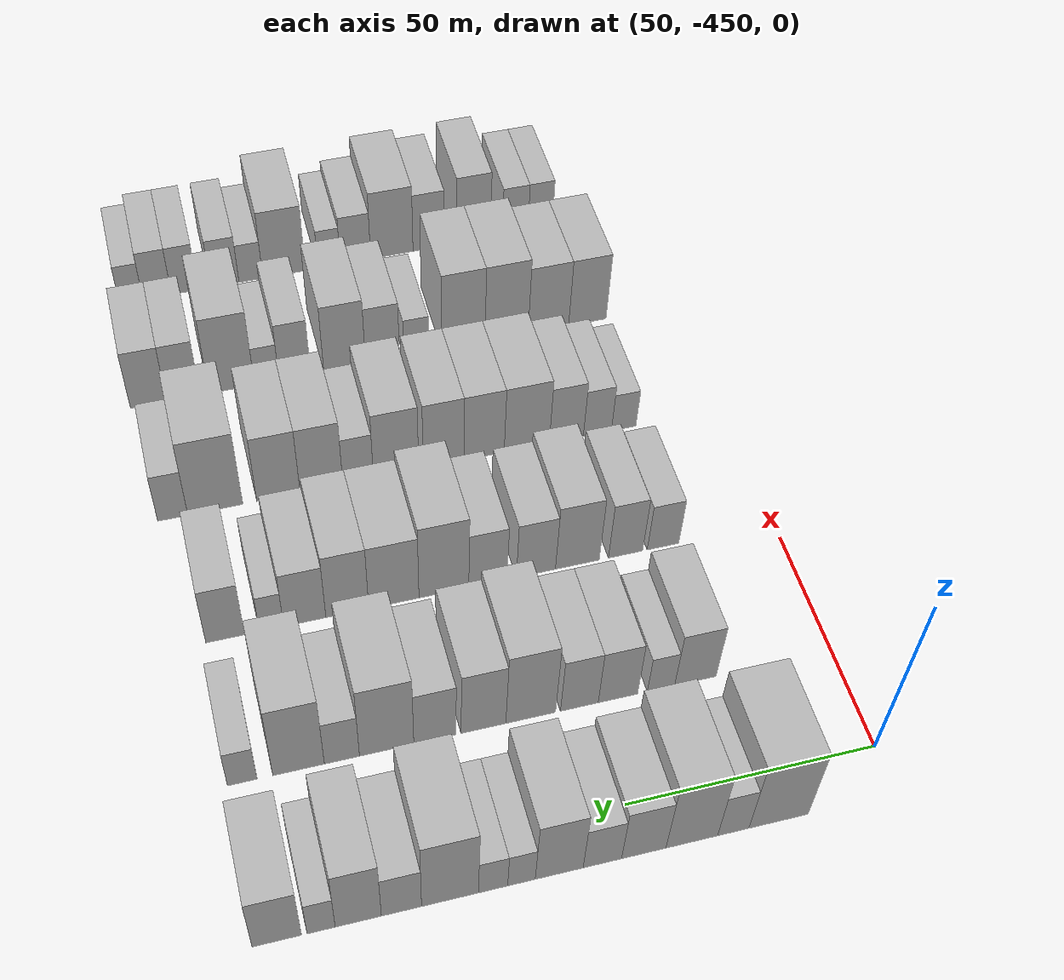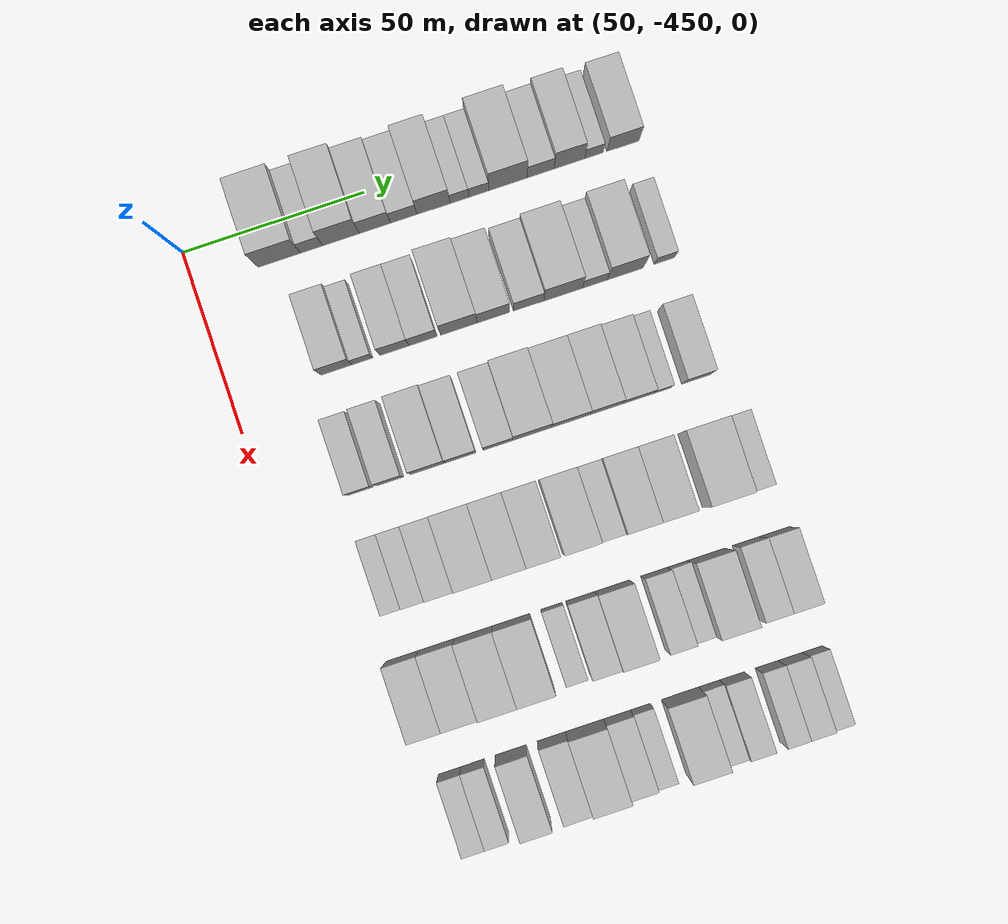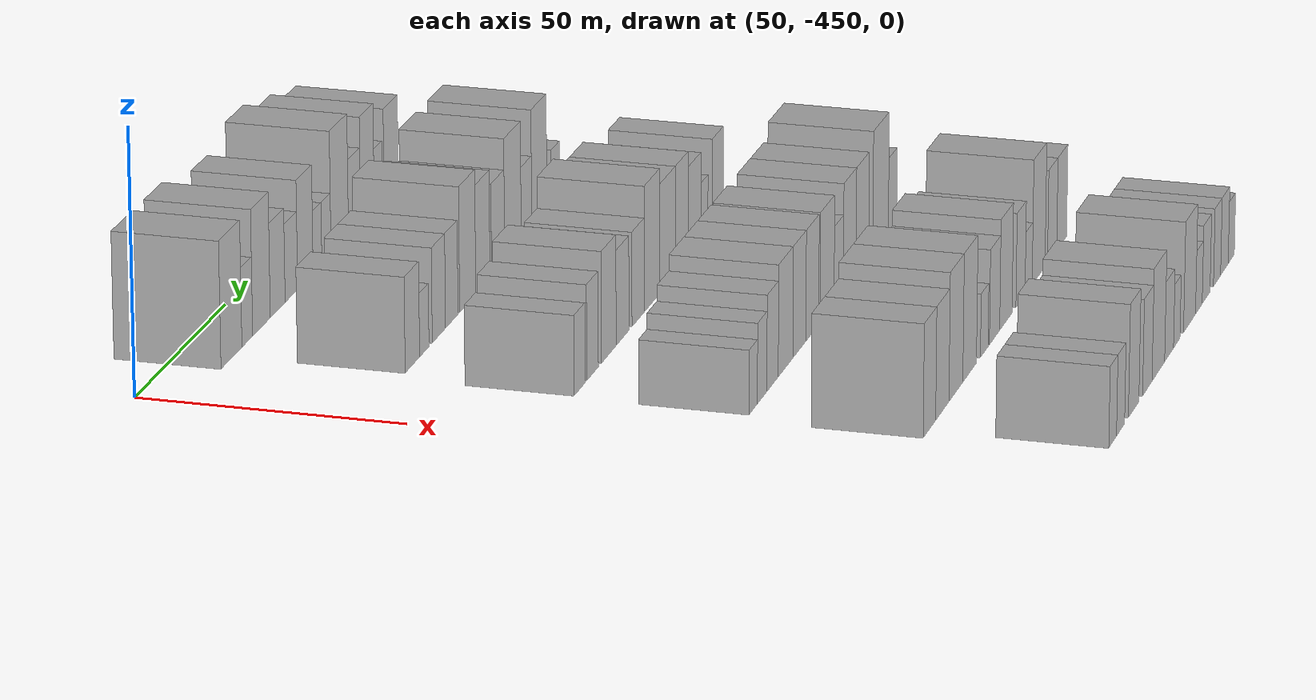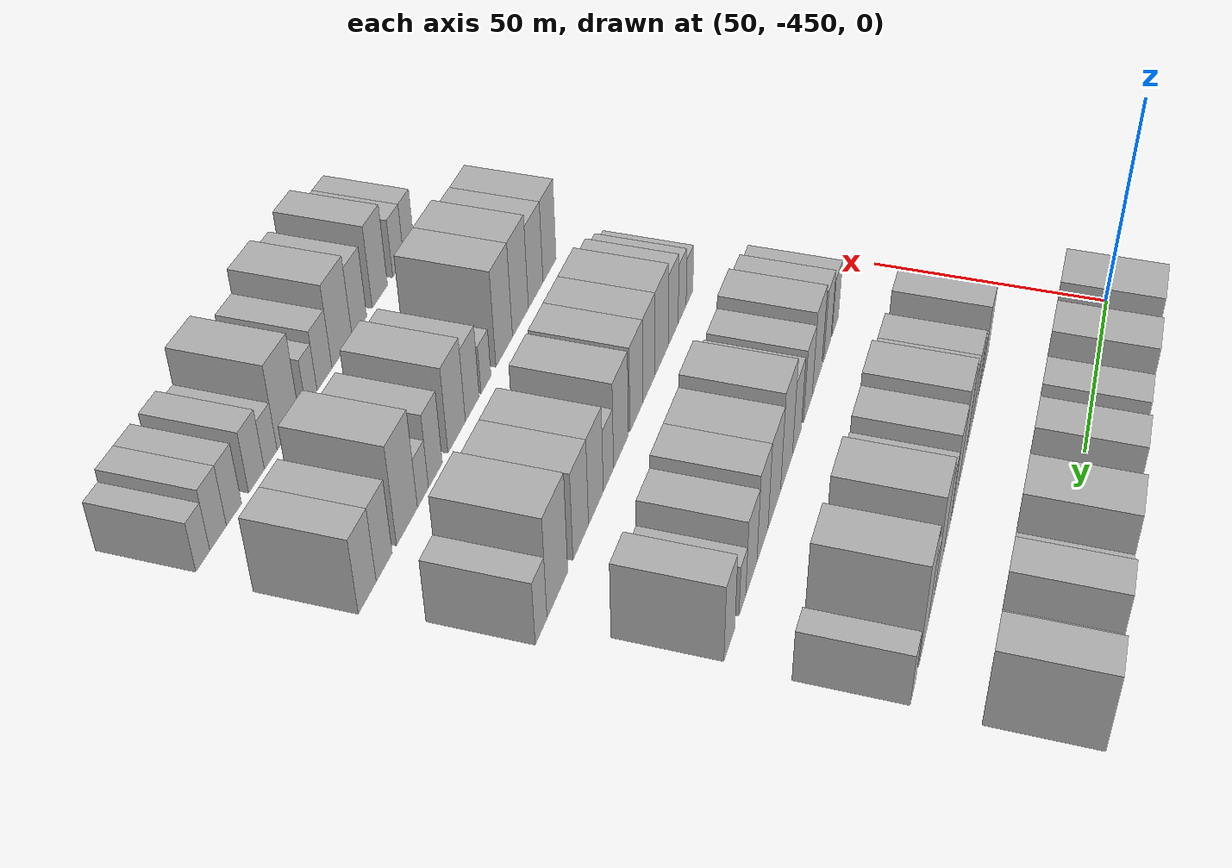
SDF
<sdf version="1.6">
 <world name="default">
  <model name="building_14">
   <static>1</static>
   <pose>50.0000 -426.5476 0 0.000000 0.000000 0.000000</pose>
   <link name="link">
    <pose>0 0 12.00 0 0 0</pose>
    <collision name="collision"><geometry><box><size>20.0000 11.7119 24.0000</size></box></geometry></collision>
    <visual name="visual">
     <cast_shadows>0</cast_shadows>
     <geometry><box><size>20.0000 11.7119 24.0000</size></box></geometry>
     <material>
      <script>
       <uri>model://HANNAS_wall/materials/scripts</uri>
       <uri>model://HANNAS_wall/materials/textures</uri>
       <name>vrc/HANNAS_wall</name>
      </script>
     </material>
    </visual>
   </link>
  </model>
  <model name="building_15">
   <static>1</static>
   <pose>50.0000 -417.6448 0 0.000000 0.000000 0.000000</pose>
   <link name="link">
    <pose>0 0 7.50 0 0 0</pose>
    <collision name="collision"><geometry><box><size>20.0000 6.0938 15.0000</size></box></geometry></collision>
    <visual name="visual">
     <cast_shadows>0</cast_shadows>
     <geometry><box><size>20.0000 6.0938 15.0000</size></box></geometry>
     <material>
      <script>
       <uri>model://HANNAS_wall/materials/scripts</uri>
       <uri>model://HANNAS_wall/materials/textures</uri>
       <name>vrc/HANNAS_wall</name>
      </script>
     </material>
    </visual>
   </link>
  </model>
  <model name="building_16">
   <static>1</static>
   <pose>50.0000 -409.5746 0 0.000000 0.000000 0.000000</pose>
   <link name="link">
    <pose>0 0 12.00 0 0 0</pose>
    <collision name="collision"><geometry><box><size>20.0000 10.0467 24.0000</size></box></geometry></collision>
    <visual name="visual">
     <cast_shadows>0</cast_shadows>
     <geometry><box><size>20.0000 10.0467 24.0000</size></box></geometry>
     <material>
      <script>
       <uri>model://HANNAS_wall/materials/scripts</uri>
       <uri>model://HANNAS_wall/materials/textures</uri>
       <name>vrc/HANNAS_wall</name>
      </script>
     </material>
    </visual>
   </link>
  </model>
  <model name="building_17">
   <static>1</static>
   <pose>50.0000 -400.2621 0 0.000000 0.000000 0.000000</pose>
   <link name="link">
    <pose>0 0 9.00 0 0 0</pose>
    <collision name="collision"><geometry><box><size>20.0000 8.5783 18.0000</size></box></geometry></collision>
    <visual name="visual">
     <cast_shadows>0</cast_shadows>
     <geometry><box><size>20.0000 8.5783 18.0000</size></box></geometry>
     <material>
      <script>
       <uri>model://HANNAS_wall/materials/scripts</uri>
       <uri>model://HANNAS_wall/materials/textures</uri>
       <name>vrc/HANNAS_wall</name>
      </script>
     </material>
    </visual>
   </link>
  </model>
  <model name="building_18">
   <static>1</static>
   <pose>50.0000 -392.3119 0 0.000000 0.000000 0.000000</pose>
   <link name="link">
    <pose>0 0 7.50 0 0 0</pose>
    <collision name="collision"><geometry><box><size>20.0000 7.3221 15.0000</size></box></geometry></collision>
    <visual name="visual">
     <cast_shadows>0</cast_shadows>
     <geometry><box><size>20.0000 7.3221 15.0000</size></box></geometry>
     <material>
      <script>
       <uri>model://HANNAS_wall/materials/scripts</uri>
       <uri>model://HANNAS_wall/materials/textures</uri>
       <name>vrc/HANNAS_wall</name>
      </script>
     </material>
    </visual>
   </link>
  </model>
  <model name="building_19">
   <static>1</static>
   <pose>50.0000 -384.1086 0 0.000000 0.000000 0.000000</pose>
   <link name="link">
    <pose>0 0 10.50 0 0 0</pose>
    <collision name="collision"><geometry><box><size>20.0000 9.0845 21.0000</size></box></geometry></collision>
    <visual name="visual">
     <cast_shadows>0</cast_shadows>
     <geometry><box><size>20.0000 9.0845 21.0000</size></box></geometry>
     <material>
      <script>
       <uri>model://HANNAS_wall/materials/scripts</uri>
       <uri>model://HANNAS_wall/materials/textures</uri>
       <name>vrc/HANNAS_wall</name>
      </script>
     </material>
    </visual>
   </link>
  </model>
  <model name="building_20">
   <static>1</static>
   <pose>50.0000 -376.9728 0 0.000000 0.000000 0.000000</pose>
   <link name="link">
    <pose>0 0 6.00 0 0 0</pose>
    <collision name="collision"><geometry><box><size>20.0000 5.1870 12.0000</size></box></geometry></collision>
    <visual name="visual">
     <cast_shadows>0</cast_shadows>
     <geometry><box><size>20.0000 5.1870 12.0000</size></box></geometry>
     <material>
      <script>
       <uri>model://HANNAS_wall/materials/scripts</uri>
       <uri>model://HANNAS_wall/materials/textures</uri>
       <name>vrc/HANNAS_wall</name>
      </script>
     </material>
    </visual>
   </link>
  </model>
  <model name="building_21">
   <static>1</static>
   <pose>50.0000 -371.6373 0 0.000000 0.000000 0.000000</pose>
   <link name="link">
    <pose>0 0 6.00 0 0 0</pose>
    <collision name="collision"><geometry><box><size>20.0000 5.4841 12.0000</size></box></geometry></collision>
    <visual name="visual">
     <cast_shadows>0</cast_shadows>
     <geometry><box><size>20.0000 5.4841 12.0000</size></box></geometry>
     <material>
      <script>
       <uri>model://HANNAS_wall/materials/scripts</uri>
       <uri>model://HANNAS_wall/materials/textures</uri>
       <name>vrc/HANNAS_wall</name>
      </script>
     </material>
    </visual>
   </link>
  </model>
  <model name="building_22">
   <static>1</static>
   <pose>50.0000 -363.6183 0 0.000000 0.000000 0.000000</pose>
   <link name="link">
    <pose>0 0 12.00 0 0 0</pose>
    <collision name="collision"><geometry><box><size>20.0000 10.5539 24.0000</size></box></geometry></collision>
    <visual name="visual">
     <cast_shadows>0</cast_shadows>
     <geometry><box><size>20.0000 10.5539 24.0000</size></box></geometry>
     <material>
      <script>
       <uri>model://HANNAS_wall/materials/scripts</uri>
       <uri>model://HANNAS_wall/materials/textures</uri>
       <name>vrc/HANNAS_wall</name>
      </script>
     </material>
    </visual>
   </link>
  </model>
  <model name="building_23">
   <static>1</static>
   <pose>50.0000 -354.6401 0 0.000000 0.000000 0.000000</pose>
   <link name="link">
    <pose>0 0 7.50 0 0 0</pose>
    <collision name="collision"><geometry><box><size>20.0000 7.4026 15.0000</size></box></geometry></collision>
    <visual name="visual">
     <cast_shadows>0</cast_shadows>
     <geometry><box><size>20.0000 7.4026 15.0000</size></box></geometry>
     <material>
      <script>
       <uri>model://HANNAS_wall/materials/scripts</uri>
       <uri>model://HANNAS_wall/materials/textures</uri>
       <name>vrc/HANNAS_wall</name>
      </script>
     </material>
    </visual>
   </link>
  </model>
  <model name="building_24">
   <static>1</static>
   <pose>50.0000 -346.7290 0 0.000000 0.000000 0.000000</pose>
   <link name="link">
    <pose>0 0 10.50 0 0 0</pose>
    <collision name="collision"><geometry><box><size>20.0000 8.4196 21.0000</size></box></geometry></collision>
    <visual name="visual">
     <cast_shadows>0</cast_shadows>
     <geometry><box><size>20.0000 8.4196 21.0000</size></box></geometry>
     <material>
      <script>
       <uri>model://HANNAS_wall/materials/scripts</uri>
       <uri>model://HANNAS_wall/materials/textures</uri>
       <name>vrc/HANNAS_wall</name>
      </script>
     </material>
    </visual>
   </link>
  </model>
  <model name="building_25">
   <static>1</static>
   <pose>50.0000 -339.9588 0 0.000000 0.000000 0.000000</pose>
   <link name="link">
    <pose>0 0 6.00 0 0 0</pose>
    <collision name="collision"><geometry><box><size>20.0000 5.1209 12.0000</size></box></geometry></collision>
    <visual name="visual">
     <cast_shadows>0</cast_shadows>
     <geometry><box><size>20.0000 5.1209 12.0000</size></box></geometry>
     <material>
      <script>
       <uri>model://HANNAS_wall/materials/scripts</uri>
       <uri>model://HANNAS_wall/materials/textures</uri>
       <name>vrc/HANNAS_wall</name>
      </script>
     </material>
    </visual>
   </link>
  </model>
  <model name="building_26">
   <static>1</static>
   <pose>50.0000 -331.9432 0 0.000000 0.000000 0.000000</pose>
   <link name="link">
    <pose>0 0 9.00 0 0 0</pose>
    <collision name="collision"><geometry><box><size>20.0000 8.9103 18.0000</size></box></geometry></collision>
    <visual name="visual">
     <cast_shadows>0</cast_shadows>
     <geometry><box><size>20.0000 8.9103 18.0000</size></box></geometry>
     <material>
      <script>
       <uri>model://HANNAS_wall/materials/scripts</uri>
       <uri>model://HANNAS_wall/materials/textures</uri>
       <name>vrc/HANNAS_wall</name>
      </script>
     </material>
    </visual>
   </link>
  </model>
  <model name="building_133">
   <static>1</static>
   <pose>82.0000 -421.3788 0 0.000000 0.000000 0.000000</pose>
   <link name="link">
    <pose>0 0 9.00 0 0 0</pose>
    <collision name="collision"><geometry><box><size>20.0000 8.5883 18.0000</size></box></geometry></collision>
    <visual name="visual">
     <cast_shadows>0</cast_shadows>
     <geometry><box><size>20.0000 8.5883 18.0000</size></box></geometry>
     <material>
      <script>
       <uri>model://HANNAS_wall/materials/scripts</uri>
       <uri>model://HANNAS_wall/materials/textures</uri>
       <name>vrc/HANNAS_wall</name>
      </script>
     </material>
    </visual>
   </link>
  </model>
  <model name="building_134">
   <static>1</static>
   <pose>82.0000 -414.2741 0 0.000000 0.000000 0.000000</pose>
   <link name="link">
    <pose>0 0 6.00 0 0 0</pose>
    <collision name="collision"><geometry><box><size>20.0000 5.6212 12.0000</size></box></geometry></collision>
    <visual name="visual">
     <cast_shadows>0</cast_shadows>
     <geometry><box><size>20.0000 5.6212 12.0000</size></box></geometry>
     <material>
      <script>
       <uri>model://HANNAS_wall/materials/scripts</uri>
       <uri>model://HANNAS_wall/materials/textures</uri>
       <name>vrc/HANNAS_wall</name>
      </script>
     </material>
    </visual>
   </link>
  </model>
  <model name="building_135">
   <static>1</static>
   <pose>82.0000 -405.4393 0 0.000000 0.000000 0.000000</pose>
   <link name="link">
    <pose>0 0 9.00 0 0 0</pose>
    <collision name="collision"><geometry><box><size>20.0000 8.0485 18.0000</size></box></geometry></collision>
    <visual name="visual">
     <cast_shadows>0</cast_shadows>
     <geometry><box><size>20.0000 8.0485 18.0000</size></box></geometry>
     <material>
      <script>
       <uri>model://HANNAS_wall/materials/scripts</uri>
       <uri>model://HANNAS_wall/materials/textures</uri>
       <name>vrc/HANNAS_wall</name>
      </script>
     </material>
    </visual>
   </link>
  </model>
  <model name="building_136">
   <static>1</static>
   <pose>82.0000 -397.5836 0 0.000000 0.000000 0.000000</pose>
   <link name="link">
    <pose>0 0 9.00 0 0 0</pose>
    <collision name="collision"><geometry><box><size>20.0000 7.6629 18.0000</size></box></geometry></collision>
    <visual name="visual">
     <cast_shadows>0</cast_shadows>
     <geometry><box><size>20.0000 7.6629 18.0000</size></box></geometry>
     <material>
      <script>
       <uri>model://HANNAS_wall/materials/scripts</uri>
       <uri>model://HANNAS_wall/materials/textures</uri>
       <name>vrc/HANNAS_wall</name>
      </script>
     </material>
    </visual>
   </link>
  </model>
  <model name="building_137">
   <static>1</static>
   <pose>82.0000 -387.7537 0 0.000000 0.000000 0.000000</pose>
   <link name="link">
    <pose>0 0 12.00 0 0 0</pose>
    <collision name="collision"><geometry><box><size>20.0000 9.9969 24.0000</size></box></geometry></collision>
    <visual name="visual">
     <cast_shadows>0</cast_shadows>
     <geometry><box><size>20.0000 9.9969 24.0000</size></box></geometry>
     <material>
      <script>
       <uri>model://HANNAS_wall/materials/scripts</uri>
       <uri>model://HANNAS_wall/materials/textures</uri>
       <name>vrc/HANNAS_wall</name>
      </script>
     </material>
    </visual>
   </link>
  </model>
  <model name="building_138">
   <static>1</static>
   <pose>82.0000 -378.2867 0 0.000000 0.000000 0.000000</pose>
   <link name="link">
    <pose>0 0 10.50 0 0 0</pose>
    <collision name="collision"><geometry><box><size>20.0000 8.9370 21.0000</size></box></geometry></collision>
    <visual name="visual">
     <cast_shadows>0</cast_shadows>
     <geometry><box><size>20.0000 8.9370 21.0000</size></box></geometry>
     <material>
      <script>
       <uri>model://HANNAS_wall/materials/scripts</uri>
       <uri>model://HANNAS_wall/materials/textures</uri>
       <name>vrc/HANNAS_wall</name>
      </script>
     </material>
    </visual>
   </link>
  </model>
  <model name="building_139">
   <static>1</static>
   <pose>82.0000 -368.6589 0 0.000000 0.000000 0.000000</pose>
   <link name="link">
    <pose>0 0 9.00 0 0 0</pose>
    <collision name="collision"><geometry><box><size>20.0000 8.3187 18.0000</size></box></geometry></collision>
    <visual name="visual">
     <cast_shadows>0</cast_shadows>
     <geometry><box><size>20.0000 8.3187 18.0000</size></box></geometry>
     <material>
      <script>
       <uri>model://HANNAS_wall/materials/scripts</uri>
       <uri>model://HANNAS_wall/materials/textures</uri>
       <name>vrc/HANNAS_wall</name>
      </script>
     </material>
    </visual>
   </link>
  </model>
  <model name="building_140">
   <static>1</static>
   <pose>82.0000 -359.1769 0 0.000000 0.000000 0.000000</pose>
   <link name="link">
    <pose>0 0 12.00 0 0 0</pose>
    <collision name="collision"><geometry><box><size>20.0000 10.6454 24.0000</size></box></geometry></collision>
    <visual name="visual">
     <cast_shadows>0</cast_shadows>
     <geometry><box><size>20.0000 10.6454 24.0000</size></box></geometry>
     <material>
      <script>
       <uri>model://HANNAS_wall/materials/scripts</uri>
       <uri>model://HANNAS_wall/materials/textures</uri>
       <name>vrc/HANNAS_wall</name>
      </script>
     </material>
    </visual>
   </link>
  </model>
  <model name="building_141">
   <static>1</static>
   <pose>82.0000 -350.4412 0 0.000000 0.000000 0.000000</pose>
   <link name="link">
    <pose>0 0 7.50 0 0 0</pose>
    <collision name="collision"><geometry><box><size>20.0000 6.8260 15.0000</size></box></geometry></collision>
    <visual name="visual">
     <cast_shadows>0</cast_shadows>
     <geometry><box><size>20.0000 6.8260 15.0000</size></box></geometry>
     <material>
      <script>
       <uri>model://HANNAS_wall/materials/scripts</uri>
       <uri>model://HANNAS_wall/materials/textures</uri>
       <name>vrc/HANNAS_wall</name>
      </script>
     </material>
    </visual>
   </link>
  </model>
  <model name="building_142">
   <static>1</static>
   <pose>82.0000 -342.0538 0 0.000000 0.000000 0.000000</pose>
   <link name="link">
    <pose>0 0 12.00 0 0 0</pose>
    <collision name="collision"><geometry><box><size>20.0000 9.9488 24.0000</size></box></geometry></collision>
    <visual name="visual">
     <cast_shadows>0</cast_shadows>
     <geometry><box><size>20.0000 9.9488 24.0000</size></box></geometry>
     <material>
      <script>
       <uri>model://HANNAS_wall/materials/scripts</uri>
       <uri>model://HANNAS_wall/materials/textures</uri>
       <name>vrc/HANNAS_wall</name>
      </script>
     </material>
    </visual>
   </link>
  </model>
  <model name="building_143">
   <static>1</static>
   <pose>82.0000 -331.2459 0 0.000000 0.000000 0.000000</pose>
   <link name="link">
    <pose>0 0 6.00 0 0 0</pose>
    <collision name="collision"><geometry><box><size>20.0000 5.6671 12.0000</size></box></geometry></collision>
    <visual name="visual">
     <cast_shadows>0</cast_shadows>
     <geometry><box><size>20.0000 5.6671 12.0000</size></box></geometry>
     <material>
      <script>
       <uri>model://HANNAS_wall/materials/scripts</uri>
       <uri>model://HANNAS_wall/materials/textures</uri>
       <name>vrc/HANNAS_wall</name>
      </script>
     </material>
    </visual>
   </link>
  </model>
  <model name="building_254">
   <static>1</static>
   <pose>114.0000 -425.4057 0 0.000000 0.000000 0.000000</pose>
   <link name="link">
    <pose>0 0 7.50 0 0 0</pose>
    <collision name="collision"><geometry><box><size>20.0000 6.8958 15.0000</size></box></geometry></collision>
    <visual name="visual">
     <cast_shadows>0</cast_shadows>
     <geometry><box><size>20.0000 6.8958 15.0000</size></box></geometry>
     <material>
      <script>
       <uri>model://HANNAS_wall/materials/scripts</uri>
       <uri>model://HANNAS_wall/materials/textures</uri>
       <name>vrc/HANNAS_wall</name>
      </script>
     </material>
    </visual>
   </link>
  </model>
  <model name="building_255">
   <static>1</static>
   <pose>114.0000 -417.2362 0 0.000000 0.000000 0.000000</pose>
   <link name="link">
    <pose>0 0 9.00 0 0 0</pose>
    <collision name="collision"><geometry><box><size>20.0000 7.4433 18.0000</size></box></geometry></collision>
    <visual name="visual">
     <cast_shadows>0</cast_shadows>
     <geometry><box><size>20.0000 7.4433 18.0000</size></box></geometry>
     <material>
      <script>
       <uri>model://HANNAS_wall/materials/scripts</uri>
       <uri>model://HANNAS_wall/materials/textures</uri>
       <name>vrc/HANNAS_wall</name>
      </script>
     </material>
    </visual>
   </link>
  </model>
  <model name="building_256">
   <static>1</static>
   <pose>114.0000 -406.7997 0 0.000000 0.000000 0.000000</pose>
   <link name="link">
    <pose>0 0 10.50 0 0 0</pose>
    <collision name="collision"><geometry><box><size>20.0000 9.4295 21.0000</size></box></geometry></collision>
    <visual name="visual">
     <cast_shadows>0</cast_shadows>
     <geometry><box><size>20.0000 9.4295 21.0000</size></box></geometry>
     <material>
      <script>
       <uri>model://HANNAS_wall/materials/scripts</uri>
       <uri>model://HANNAS_wall/materials/textures</uri>
       <name>vrc/HANNAS_wall</name>
      </script>
     </material>
    </visual>
   </link>
  </model>
  <model name="building_257">
   <static>1</static>
   <pose>114.0000 -397.9039 0 0.000000 0.000000 0.000000</pose>
   <link name="link">
    <pose>0 0 9.00 0 0 0</pose>
    <collision name="collision"><geometry><box><size>20.0000 8.3622 18.0000</size></box></geometry></collision>
    <visual name="visual">
     <cast_shadows>0</cast_shadows>
     <geometry><box><size>20.0000 8.3622 18.0000</size></box></geometry>
     <material>
      <script>
       <uri>model://HANNAS_wall/materials/scripts</uri>
       <uri>model://HANNAS_wall/materials/textures</uri>
       <name>vrc/HANNAS_wall</name>
      </script>
     </material>
    </visual>
   </link>
  </model>
  <model name="building_258">
   <static>1</static>
   <pose>114.0000 -387.6676 0 0.000000 0.000000 0.000000</pose>
   <link name="link">
    <pose>0 0 9.00 0 0 0</pose>
    <collision name="collision"><geometry><box><size>20.0000 8.1104 18.0000</size></box></geometry></collision>
    <visual name="visual">
     <cast_shadows>0</cast_shadows>
     <geometry><box><size>20.0000 8.1104 18.0000</size></box></geometry>
     <material>
      <script>
       <uri>model://HANNAS_wall/materials/scripts</uri>
       <uri>model://HANNAS_wall/materials/textures</uri>
       <name>vrc/HANNAS_wall</name>
      </script>
     </material>
    </visual>
   </link>
  </model>
  <model name="building_259">
   <static>1</static>
   <pose>114.0000 -378.3807 0 0.000000 0.000000 0.000000</pose>
   <link name="link">
    <pose>0 0 12.00 0 0 0</pose>
    <collision name="collision"><geometry><box><size>20.0000 10.4633 24.0000</size></box></geometry></collision>
    <visual name="visual">
     <cast_shadows>0</cast_shadows>
     <geometry><box><size>20.0000 10.4633 24.0000</size></box></geometry>
     <material>
      <script>
       <uri>model://HANNAS_wall/materials/scripts</uri>
       <uri>model://HANNAS_wall/materials/textures</uri>
       <name>vrc/HANNAS_wall</name>
      </script>
     </material>
    </visual>
   </link>
  </model>
  <model name="building_260">
   <static>1</static>
   <pose>114.0000 -367.9147 0 0.000000 0.000000 0.000000</pose>
   <link name="link">
    <pose>0 0 10.50 0 0 0</pose>
    <collision name="collision"><geometry><box><size>20.0000 10.4687 21.0000</size></box></geometry></collision>
    <visual name="visual">
     <cast_shadows>0</cast_shadows>
     <geometry><box><size>20.0000 10.4687 21.0000</size></box></geometry>
     <material>
      <script>
       <uri>model://HANNAS_wall/materials/scripts</uri>
       <uri>model://HANNAS_wall/materials/textures</uri>
       <name>vrc/HANNAS_wall</name>
      </script>
     </material>
    </visual>
   </link>
  </model>
  <model name="building_261">
   <static>1</static>
   <pose>114.0000 -358.2536 0 0.000000 0.000000 0.000000</pose>
   <link name="link">
    <pose>0 0 10.50 0 0 0</pose>
    <collision name="collision"><geometry><box><size>20.0000 8.8535 21.0000</size></box></geometry></collision>
    <visual name="visual">
     <cast_shadows>0</cast_shadows>
     <geometry><box><size>20.0000 8.8535 21.0000</size></box></geometry>
     <material>
      <script>
       <uri>model://HANNAS_wall/materials/scripts</uri>
       <uri>model://HANNAS_wall/materials/textures</uri>
       <name>vrc/HANNAS_wall</name>
      </script>
     </material>
    </visual>
   </link>
  </model>
  <model name="building_262">
   <static>1</static>
   <pose>114.0000 -349.4995 0 0.000000 0.000000 0.000000</pose>
   <link name="link">
    <pose>0 0 9.00 0 0 0</pose>
    <collision name="collision"><geometry><box><size>20.0000 8.6546 18.0000</size></box></geometry></collision>
    <visual name="visual">
     <cast_shadows>0</cast_shadows>
     <geometry><box><size>20.0000 8.6546 18.0000</size></box></geometry>
     <material>
      <script>
       <uri>model://HANNAS_wall/materials/scripts</uri>
       <uri>model://HANNAS_wall/materials/textures</uri>
       <name>vrc/HANNAS_wall</name>
      </script>
     </material>
    </visual>
   </link>
  </model>
  <model name="building_263">
   <static>1</static>
   <pose>114.0000 -342.6913 0 0.000000 0.000000 0.000000</pose>
   <link name="link">
    <pose>0 0 6.00 0 0 0</pose>
    <collision name="collision"><geometry><box><size>20.0000 4.9618 12.0000</size></box></geometry></collision>
    <visual name="visual">
     <cast_shadows>0</cast_shadows>
     <geometry><box><size>20.0000 4.9618 12.0000</size></box></geometry>
     <material>
      <script>
       <uri>model://HANNAS_wall/materials/scripts</uri>
       <uri>model://HANNAS_wall/materials/textures</uri>
       <name>vrc/HANNAS_wall</name>
      </script>
     </material>
    </visual>
   </link>
  </model>
  <model name="building_264">
   <static>1</static>
   <pose>114.0000 -333.2845 0 0.000000 0.000000 0.000000</pose>
   <link name="link">
    <pose>0 0 9.00 0 0 0</pose>
    <collision name="collision"><geometry><box><size>20.0000 7.8519 18.0000</size></box></geometry></collision>
    <visual name="visual">
     <cast_shadows>0</cast_shadows>
     <geometry><box><size>20.0000 7.8519 18.0000</size></box></geometry>
     <material>
      <script>
       <uri>model://HANNAS_wall/materials/scripts</uri>
       <uri>model://HANNAS_wall/materials/textures</uri>
       <name>vrc/HANNAS_wall</name>
      </script>
     </material>
    </visual>
   </link>
  </model>
  <model name="building_374">
   <static>1</static>
   <pose>146.0000 -427.0368 0 0.000000 0.000000 0.000000</pose>
   <link name="link">
    <pose>0 0 6.00 0 0 0</pose>
    <collision name="collision"><geometry><box><size>20.0000 5.6445 12.0000</size></box></geometry></collision>
    <visual name="visual">
     <cast_shadows>0</cast_shadows>
     <geometry><box><size>20.0000 5.6445 12.0000</size></box></geometry>
     <material>
      <script>
       <uri>model://HANNAS_wall/materials/scripts</uri>
       <uri>model://HANNAS_wall/materials/textures</uri>
       <name>vrc/HANNAS_wall</name>
      </script>
     </material>
    </visual>
   </link>
  </model>
  <model name="building_375">
   <static>1</static>
   <pose>146.0000 -420.9960 0 0.000000 0.000000 0.000000</pose>
   <link name="link">
    <pose>0 0 7.50 0 0 0</pose>
    <collision name="collision"><geometry><box><size>20.0000 6.4370 15.0000</size></box></geometry></collision>
    <visual name="visual">
     <cast_shadows>0</cast_shadows>
     <geometry><box><size>20.0000 6.4370 15.0000</size></box></geometry>
     <material>
      <script>
       <uri>model://HANNAS_wall/materials/scripts</uri>
       <uri>model://HANNAS_wall/materials/textures</uri>
       <name>vrc/HANNAS_wall</name>
      </script>
     </material>
    </visual>
   </link>
  </model>
  <model name="building_376">
   <static>1</static>
   <pose>146.0000 -413.9029 0 0.000000 0.000000 0.000000</pose>
   <link name="link">
    <pose>0 0 9.00 0 0 0</pose>
    <collision name="collision"><geometry><box><size>20.0000 7.7493 18.0000</size></box></geometry></collision>
    <visual name="visual">
     <cast_shadows>0</cast_shadows>
     <geometry><box><size>20.0000 7.7493 18.0000</size></box></geometry>
     <material>
      <script>
       <uri>model://HANNAS_wall/materials/scripts</uri>
       <uri>model://HANNAS_wall/materials/textures</uri>
       <name>vrc/HANNAS_wall</name>
      </script>
     </material>
    </visual>
   </link>
  </model>
  <model name="building_377">
   <static>1</static>
   <pose>146.0000 -404.9308 0 0.000000 0.000000 0.000000</pose>
   <link name="link">
    <pose>0 0 10.50 0 0 0</pose>
    <collision name="collision"><geometry><box><size>20.0000 10.1949 21.0000</size></box></geometry></collision>
    <visual name="visual">
     <cast_shadows>0</cast_shadows>
     <geometry><box><size>20.0000 10.1949 21.0000</size></box></geometry>
     <material>
      <script>
       <uri>model://HANNAS_wall/materials/scripts</uri>
       <uri>model://HANNAS_wall/materials/textures</uri>
       <name>vrc/HANNAS_wall</name>
      </script>
     </material>
    </visual>
   </link>
  </model>
  <model name="building_378">
   <static>1</static>
   <pose>146.0000 -395.3208 0 0.000000 0.000000 0.000000</pose>
   <link name="link">
    <pose>0 0 10.50 0 0 0</pose>
    <collision name="collision"><geometry><box><size>20.0000 9.0250 21.0000</size></box></geometry></collision>
    <visual name="visual">
     <cast_shadows>0</cast_shadows>
     <geometry><box><size>20.0000 9.0250 21.0000</size></box></geometry>
     <material>
      <script>
       <uri>model://HANNAS_wall/materials/scripts</uri>
       <uri>model://HANNAS_wall/materials/textures</uri>
       <name>vrc/HANNAS_wall</name>
      </script>
     </material>
    </visual>
   </link>
  </model>
  <model name="building_379">
   <static>1</static>
   <pose>146.0000 -386.2634 0 0.000000 0.000000 0.000000</pose>
   <link name="link">
    <pose>0 0 10.50 0 0 0</pose>
    <collision name="collision"><geometry><box><size>20.0000 9.0898 21.0000</size></box></geometry></collision>
    <visual name="visual">
     <cast_shadows>0</cast_shadows>
     <geometry><box><size>20.0000 9.0898 21.0000</size></box></geometry>
     <material>
      <script>
       <uri>model://HANNAS_wall/materials/scripts</uri>
       <uri>model://HANNAS_wall/materials/textures</uri>
       <name>vrc/HANNAS_wall</name>
      </script>
     </material>
    </visual>
   </link>
  </model>
  <model name="building_380">
   <static>1</static>
   <pose>146.0000 -375.7224 0 0.000000 0.000000 0.000000</pose>
   <link name="link">
    <pose>0 0 10.50 0 0 0</pose>
    <collision name="collision"><geometry><box><size>20.0000 9.9923 21.0000</size></box></geometry></collision>
    <visual name="visual">
     <cast_shadows>0</cast_shadows>
     <geometry><box><size>20.0000 9.9923 21.0000</size></box></geometry>
     <material>
      <script>
       <uri>model://HANNAS_wall/materials/scripts</uri>
       <uri>model://HANNAS_wall/materials/textures</uri>
       <name>vrc/HANNAS_wall</name>
      </script>
     </material>
    </visual>
   </link>
  </model>
  <model name="building_381">
   <static>1</static>
   <pose>146.0000 -367.3770 0 0.000000 0.000000 0.000000</pose>
   <link name="link">
    <pose>0 0 7.50 0 0 0</pose>
    <collision name="collision"><geometry><box><size>20.0000 6.6984 15.0000</size></box></geometry></collision>
    <visual name="visual">
     <cast_shadows>0</cast_shadows>
     <geometry><box><size>20.0000 6.6984 15.0000</size></box></geometry>
     <material>
      <script>
       <uri>model://HANNAS_wall/materials/scripts</uri>
       <uri>model://HANNAS_wall/materials/textures</uri>
       <name>vrc/HANNAS_wall</name>
      </script>
     </material>
    </visual>
   </link>
  </model>
  <model name="building_382">
   <static>1</static>
   <pose>146.0000 -359.3785 0 0.000000 0.000000 0.000000</pose>
   <link name="link">
    <pose>0 0 10.50 0 0 0</pose>
    <collision name="collision"><geometry><box><size>20.0000 9.2987 21.0000</size></box></geometry></collision>
    <visual name="visual">
     <cast_shadows>0</cast_shadows>
     <geometry><box><size>20.0000 9.2987 21.0000</size></box></geometry>
     <material>
      <script>
       <uri>model://HANNAS_wall/materials/scripts</uri>
       <uri>model://HANNAS_wall/materials/textures</uri>
       <name>vrc/HANNAS_wall</name>
      </script>
     </material>
    </visual>
   </link>
  </model>
  <model name="building_383">
   <static>1</static>
   <pose>146.0000 -350.0383 0 0.000000 0.000000 0.000000</pose>
   <link name="link">
    <pose>0 0 10.50 0 0 0</pose>
    <collision name="collision"><geometry><box><size>20.0000 9.3816 21.0000</size></box></geometry></collision>
    <visual name="visual">
     <cast_shadows>0</cast_shadows>
     <geometry><box><size>20.0000 9.3816 21.0000</size></box></geometry>
     <material>
      <script>
       <uri>model://HANNAS_wall/materials/scripts</uri>
       <uri>model://HANNAS_wall/materials/textures</uri>
       <name>vrc/HANNAS_wall</name>
      </script>
     </material>
    </visual>
   </link>
  </model>
  <model name="building_384">
   <static>1</static>
   <pose>146.0000 -336.4694 0 0.000000 0.000000 0.000000</pose>
   <link name="link">
    <pose>0 0 12.00 0 0 0</pose>
    <collision name="collision"><geometry><box><size>20.0000 11.7562 24.0000</size></box></geometry></collision>
    <visual name="visual">
     <cast_shadows>0</cast_shadows>
     <geometry><box><size>20.0000 11.7562 24.0000</size></box></geometry>
     <material>
      <script>
       <uri>model://HANNAS_wall/materials/scripts</uri>
       <uri>model://HANNAS_wall/materials/textures</uri>
       <name>vrc/HANNAS_wall</name>
      </script>
     </material>
    </visual>
   </link>
  </model>
  <model name="building_385">
   <static>1</static>
   <pose>146.0000 -327.3974 0 0.000000 0.000000 0.000000</pose>
   <link name="link">
    <pose>0 0 7.50 0 0 0</pose>
    <collision name="collision"><geometry><box><size>20.0000 6.3878 15.0000</size></box></geometry></collision>
    <visual name="visual">
     <cast_shadows>0</cast_shadows>
     <geometry><box><size>20.0000 6.3878 15.0000</size></box></geometry>
     <material>
      <script>
       <uri>model://HANNAS_wall/materials/scripts</uri>
       <uri>model://HANNAS_wall/materials/textures</uri>
       <name>vrc/HANNAS_wall</name>
      </script>
     </material>
    </visual>
   </link>
  </model>
  <model name="building_493">
   <static>1</static>
   <pose>178.0000 -428.4449 0 0.000000 0.000000 0.000000</pose>
   <link name="link">
    <pose>0 0 10.50 0 0 0</pose>
    <collision name="collision"><geometry><box><size>20.0000 9.0191 21.0000</size></box></geometry></collision>
    <visual name="visual">
     <cast_shadows>0</cast_shadows>
     <geometry><box><size>20.0000 9.0191 21.0000</size></box></geometry>
     <material>
      <script>
       <uri>model://HANNAS_wall/materials/scripts</uri>
       <uri>model://HANNAS_wall/materials/textures</uri>
       <name>vrc/HANNAS_wall</name>
      </script>
     </material>
    </visual>
   </link>
  </model>
  <model name="building_494">
   <static>1</static>
   <pose>178.0000 -419.0818 0 0.000000 0.000000 0.000000</pose>
   <link name="link">
    <pose>0 0 10.50 0 0 0</pose>
    <collision name="collision"><geometry><box><size>20.0000 9.7070 21.0000</size></box></geometry></collision>
    <visual name="visual">
     <cast_shadows>0</cast_shadows>
     <geometry><box><size>20.0000 9.7070 21.0000</size></box></geometry>
     <material>
      <script>
       <uri>model://HANNAS_wall/materials/scripts</uri>
       <uri>model://HANNAS_wall/materials/textures</uri>
       <name>vrc/HANNAS_wall</name>
      </script>
     </material>
    </visual>
   </link>
  </model>
  <model name="building_495">
   <static>1</static>
   <pose>178.0000 -409.0823 0 0.000000 0.000000 0.000000</pose>
   <link name="link">
    <pose>0 0 12.00 0 0 0</pose>
    <collision name="collision"><geometry><box><size>20.0000 10.2920 24.0000</size></box></geometry></collision>
    <visual name="visual">
     <cast_shadows>0</cast_shadows>
     <geometry><box><size>20.0000 10.2920 24.0000</size></box></geometry>
     <material>
      <script>
       <uri>model://HANNAS_wall/materials/scripts</uri>
       <uri>model://HANNAS_wall/materials/textures</uri>
       <name>vrc/HANNAS_wall</name>
      </script>
     </material>
    </visual>
   </link>
  </model>
  <model name="building_496">
   <static>1</static>
   <pose>178.0000 -398.8212 0 0.000000 0.000000 0.000000</pose>
   <link name="link">
    <pose>0 0 12.00 0 0 0</pose>
    <collision name="collision"><geometry><box><size>20.0000 10.2302 24.0000</size></box></geometry></collision>
    <visual name="visual">
     <cast_shadows>0</cast_shadows>
     <geometry><box><size>20.0000 10.2302 24.0000</size></box></geometry>
     <material>
      <script>
       <uri>model://HANNAS_wall/materials/scripts</uri>
       <uri>model://HANNAS_wall/materials/textures</uri>
       <name>vrc/HANNAS_wall</name>
      </script>
     </material>
    </visual>
   </link>
  </model>
  <model name="building_497">
   <static>1</static>
   <pose>178.0000 -387.7949 0 0.000000 0.000000 0.000000</pose>
   <link name="link">
    <pose>0 0 6.00 0 0 0</pose>
    <collision name="collision"><geometry><box><size>20.0000 5.8223 12.0000</size></box></geometry></collision>
    <visual name="visual">
     <cast_shadows>0</cast_shadows>
     <geometry><box><size>20.0000 5.8223 12.0000</size></box></geometry>
     <material>
      <script>
       <uri>model://HANNAS_wall/materials/scripts</uri>
       <uri>model://HANNAS_wall/materials/textures</uri>
       <name>vrc/HANNAS_wall</name>
      </script>
     </material>
    </visual>
   </link>
  </model>
  <model name="building_498">
   <static>1</static>
   <pose>178.0000 -379.9262 0 0.000000 0.000000 0.000000</pose>
   <link name="link">
    <pose>0 0 9.00 0 0 0</pose>
    <collision name="collision"><geometry><box><size>20.0000 7.9151 18.0000</size></box></geometry></collision>
    <visual name="visual">
     <cast_shadows>0</cast_shadows>
     <geometry><box><size>20.0000 7.9151 18.0000</size></box></geometry>
     <material>
      <script>
       <uri>model://HANNAS_wall/materials/scripts</uri>
       <uri>model://HANNAS_wall/materials/textures</uri>
       <name>vrc/HANNAS_wall</name>
      </script>
     </material>
    </visual>
   </link>
  </model>
  <model name="building_499">
   <static>1</static>
   <pose>178.0000 -371.1561 0 0.000000 0.000000 0.000000</pose>
   <link name="link">
    <pose>0 0 10.50 0 0 0</pose>
    <collision name="collision"><geometry><box><size>20.0000 9.6250 21.0000</size></box></geometry></collision>
    <visual name="visual">
     <cast_shadows>0</cast_shadows>
     <geometry><box><size>20.0000 9.6250 21.0000</size></box></geometry>
     <material>
      <script>
       <uri>model://HANNAS_wall/materials/scripts</uri>
       <uri>model://HANNAS_wall/materials/textures</uri>
       <name>vrc/HANNAS_wall</name>
      </script>
     </material>
    </visual>
   </link>
  </model>
  <model name="building_500">
   <static>1</static>
   <pose>178.0000 -359.7311 0 0.000000 0.000000 0.000000</pose>
   <link name="link">
    <pose>0 0 9.00 0 0 0</pose>
    <collision name="collision"><geometry><box><size>20.0000 7.2250 18.0000</size></box></geometry></collision>
    <visual name="visual">
     <cast_shadows>0</cast_shadows>
     <geometry><box><size>20.0000 7.2250 18.0000</size></box></geometry>
     <material>
      <script>
       <uri>model://HANNAS_wall/materials/scripts</uri>
       <uri>model://HANNAS_wall/materials/textures</uri>
       <name>vrc/HANNAS_wall</name>
      </script>
     </material>
    </visual>
   </link>
  </model>
  <model name="building_501">
   <static>1</static>
   <pose>178.0000 -353.3098 0 0.000000 0.000000 0.000000</pose>
   <link name="link">
    <pose>0 0 6.00 0 0 0</pose>
    <collision name="collision"><geometry><box><size>20.0000 5.6177 12.0000</size></box></geometry></collision>
    <visual name="visual">
     <cast_shadows>0</cast_shadows>
     <geometry><box><size>20.0000 5.6177 12.0000</size></box></geometry>
     <material>
      <script>
       <uri>model://HANNAS_wall/materials/scripts</uri>
       <uri>model://HANNAS_wall/materials/textures</uri>
       <name>vrc/HANNAS_wall</name>
      </script>
     </material>
    </visual>
   </link>
  </model>
  <model name="building_502">
   <static>1</static>
   <pose>178.0000 -345.3439 0 0.000000 0.000000 0.000000</pose>
   <link name="link">
    <pose>0 0 12.00 0 0 0</pose>
    <collision name="collision"><geometry><box><size>20.0000 10.3140 24.0000</size></box></geometry></collision>
    <visual name="visual">
     <cast_shadows>0</cast_shadows>
     <geometry><box><size>20.0000 10.3140 24.0000</size></box></geometry>
     <material>
      <script>
       <uri>model://HANNAS_wall/materials/scripts</uri>
       <uri>model://HANNAS_wall/materials/textures</uri>
       <name>vrc/HANNAS_wall</name>
      </script>
     </material>
    </visual>
   </link>
  </model>
  <model name="building_503">
   <static>1</static>
   <pose>178.0000 -334.4440 0 0.000000 0.000000 0.000000</pose>
   <link name="link">
    <pose>0 0 9.00 0 0 0</pose>
    <collision name="collision"><geometry><box><size>20.0000 7.4859 18.0000</size></box></geometry></collision>
    <visual name="visual">
     <cast_shadows>0</cast_shadows>
     <geometry><box><size>20.0000 7.4859 18.0000</size></box></geometry>
     <material>
      <script>
       <uri>model://HANNAS_wall/materials/scripts</uri>
       <uri>model://HANNAS_wall/materials/textures</uri>
       <name>vrc/HANNAS_wall</name>
      </script>
     </material>
    </visual>
   </link>
  </model>
  <model name="building_504">
   <static>1</static>
   <pose>178.0000 -326.6639 0 0.000000 0.000000 0.000000</pose>
   <link name="link">
    <pose>0 0 9.00 0 0 0</pose>
    <collision name="collision"><geometry><box><size>20.0000 8.0742 18.0000</size></box></geometry></collision>
    <visual name="visual">
     <cast_shadows>0</cast_shadows>
     <geometry><box><size>20.0000 8.0742 18.0000</size></box></geometry>
     <material>
      <script>
       <uri>model://HANNAS_wall/materials/scripts</uri>
       <uri>model://HANNAS_wall/materials/textures</uri>
       <name>vrc/HANNAS_wall</name>
      </script>
     </material>
    </visual>
   </link>
  </model>
  <model name="building_613">
   <static>1</static>
   <pose>210.0000 -426.2220 0 0.000000 0.000000 0.000000</pose>
   <link name="link">
    <pose>0 0 7.50 0 0 0</pose>
    <collision name="collision"><geometry><box><size>20.0000 6.0943 15.0000</size></box></geometry></collision>
    <visual name="visual">
     <cast_shadows>0</cast_shadows>
     <geometry><box><size>20.0000 6.0943 15.0000</size></box></geometry>
     <material>
      <script>
       <uri>model://HANNAS_wall/materials/scripts</uri>
       <uri>model://HANNAS_wall/materials/textures</uri>
       <name>vrc/HANNAS_wall</name>
      </script>
     </material>
    </visual>
   </link>
  </model>
  <model name="building_614">
   <static>1</static>
   <pose>210.0000 -419.9695 0 0.000000 0.000000 0.000000</pose>
   <link name="link">
    <pose>0 0 7.50 0 0 0</pose>
    <collision name="collision"><geometry><box><size>20.0000 6.4106 15.0000</size></box></geometry></collision>
    <visual name="visual">
     <cast_shadows>0</cast_shadows>
     <geometry><box><size>20.0000 6.4106 15.0000</size></box></geometry>
     <material>
      <script>
       <uri>model://HANNAS_wall/materials/scripts</uri>
       <uri>model://HANNAS_wall/materials/textures</uri>
       <name>vrc/HANNAS_wall</name>
      </script>
     </material>
    </visual>
   </link>
  </model>
  <model name="building_615">
   <static>1</static>
   <pose>210.0000 -409.5352 0 0.000000 0.000000 0.000000</pose>
   <link name="link">
    <pose>0 0 10.50 0 0 0</pose>
    <collision name="collision"><geometry><box><size>20.0000 8.4581 21.0000</size></box></geometry></collision>
    <visual name="visual">
     <cast_shadows>0</cast_shadows>
     <geometry><box><size>20.0000 8.4581 21.0000</size></box></geometry>
     <material>
      <script>
       <uri>model://HANNAS_wall/materials/scripts</uri>
       <uri>model://HANNAS_wall/materials/textures</uri>
       <name>vrc/HANNAS_wall</name>
      </script>
     </material>
    </visual>
   </link>
  </model>
  <model name="building_616">
   <static>1</static>
   <pose>210.0000 -398.4526 0 0.000000 0.000000 0.000000</pose>
   <link name="link">
    <pose>0 0 9.00 0 0 0</pose>
    <collision name="collision"><geometry><box><size>20.0000 7.7071 18.0000</size></box></geometry></collision>
    <visual name="visual">
     <cast_shadows>0</cast_shadows>
     <geometry><box><size>20.0000 7.7071 18.0000</size></box></geometry>
     <material>
      <script>
       <uri>model://HANNAS_wall/materials/scripts</uri>
       <uri>model://HANNAS_wall/materials/textures</uri>
       <name>vrc/HANNAS_wall</name>
      </script>
     </material>
    </visual>
   </link>
  </model>
  <model name="building_617">
   <static>1</static>
   <pose>210.0000 -389.4061 0 0.000000 0.000000 0.000000</pose>
   <link name="link">
    <pose>0 0 10.50 0 0 0</pose>
    <collision name="collision"><geometry><box><size>20.0000 10.3859 21.0000</size></box></geometry></collision>
    <visual name="visual">
     <cast_shadows>0</cast_shadows>
     <geometry><box><size>20.0000 10.3859 21.0000</size></box></geometry>
     <material>
      <script>
       <uri>model://HANNAS_wall/materials/scripts</uri>
       <uri>model://HANNAS_wall/materials/textures</uri>
       <name>vrc/HANNAS_wall</name>
      </script>
     </material>
    </visual>
   </link>
  </model>
  <model name="building_618">
   <static>1</static>
   <pose>210.0000 -380.5153 0 0.000000 0.000000 0.000000</pose>
   <link name="link">
    <pose>0 0 7.50 0 0 0</pose>
    <collision name="collision"><geometry><box><size>20.0000 7.3957 15.0000</size></box></geometry></collision>
    <visual name="visual">
     <cast_shadows>0</cast_shadows>
     <geometry><box><size>20.0000 7.3957 15.0000</size></box></geometry>
     <material>
      <script>
       <uri>model://HANNAS_wall/materials/scripts</uri>
       <uri>model://HANNAS_wall/materials/textures</uri>
       <name>vrc/HANNAS_wall</name>
      </script>
     </material>
    </visual>
   </link>
  </model>
  <model name="building_619">
   <static>1</static>
   <pose>210.0000 -374.0983 0 0.000000 0.000000 0.000000</pose>
   <link name="link">
    <pose>0 0 6.00 0 0 0</pose>
    <collision name="collision"><geometry><box><size>20.0000 5.4382 12.0000</size></box></geometry></collision>
    <visual name="visual">
     <cast_shadows>0</cast_shadows>
     <geometry><box><size>20.0000 5.4382 12.0000</size></box></geometry>
     <material>
      <script>
       <uri>model://HANNAS_wall/materials/scripts</uri>
       <uri>model://HANNAS_wall/materials/textures</uri>
       <name>vrc/HANNAS_wall</name>
      </script>
     </material>
    </visual>
   </link>
  </model>
  <model name="building_620">
   <static>1</static>
   <pose>210.0000 -363.2685 0 0.000000 0.000000 0.000000</pose>
   <link name="link">
    <pose>0 0 10.50 0 0 0</pose>
    <collision name="collision"><geometry><box><size>20.0000 10.2214 21.0000</size></box></geometry></collision>
    <visual name="visual">
     <cast_shadows>0</cast_shadows>
     <geometry><box><size>20.0000 10.2214 21.0000</size></box></geometry>
     <material>
      <script>
       <uri>model://HANNAS_wall/materials/scripts</uri>
       <uri>model://HANNAS_wall/materials/textures</uri>
       <name>vrc/HANNAS_wall</name>
      </script>
     </material>
    </visual>
   </link>
  </model>
  <model name="building_621">
   <static>1</static>
   <pose>210.0000 -355.3054 0 0.000000 0.000000 0.000000</pose>
   <link name="link">
    <pose>0 0 6.00 0 0 0</pose>
    <collision name="collision"><geometry><box><size>20.0000 5.7047 12.0000</size></box></geometry></collision>
    <visual name="visual">
     <cast_shadows>0</cast_shadows>
     <geometry><box><size>20.0000 5.7047 12.0000</size></box></geometry>
     <material>
      <script>
       <uri>model://HANNAS_wall/materials/scripts</uri>
       <uri>model://HANNAS_wall/materials/textures</uri>
       <name>vrc/HANNAS_wall</name>
      </script>
     </material>
    </visual>
   </link>
  </model>
  <model name="building_622">
   <static>1</static>
   <pose>210.0000 -349.0582 0 0.000000 0.000000 0.000000</pose>
   <link name="link">
    <pose>0 0 7.50 0 0 0</pose>
    <collision name="collision"><geometry><box><size>20.0000 6.7898 15.0000</size></box></geometry></collision>
    <visual name="visual">
     <cast_shadows>0</cast_shadows>
     <geometry><box><size>20.0000 6.7898 15.0000</size></box></geometry>
     <material>
      <script>
       <uri>model://HANNAS_wall/materials/scripts</uri>
       <uri>model://HANNAS_wall/materials/textures</uri>
       <name>vrc/HANNAS_wall</name>
      </script>
     </material>
    </visual>
   </link>
  </model>
  <model name="building_623">
   <static>1</static>
   <pose>210.0000 -339.5390 0 0.000000 0.000000 0.000000</pose>
   <link name="link">
    <pose>0 0 7.50 0 0 0</pose>
    <collision name="collision"><geometry><box><size>20.0000 6.2485 15.0000</size></box></geometry></collision>
    <visual name="visual">
     <cast_shadows>0</cast_shadows>
     <geometry><box><size>20.0000 6.2485 15.0000</size></box></geometry>
     <material>
      <script>
       <uri>model://HANNAS_wall/materials/scripts</uri>
       <uri>model://HANNAS_wall/materials/textures</uri>
       <name>vrc/HANNAS_wall</name>
      </script>
     </material>
    </visual>
   </link>
  </model>
  <model name="building_624">
   <static>1</static>
   <pose>210.0000 -333.0706 0 0.000000 0.000000 0.000000</pose>
   <link name="link">
    <pose>0 0 7.50 0 0 0</pose>
    <collision name="collision"><geometry><box><size>20.0000 6.6883 15.0000</size></box></geometry></collision>
    <visual name="visual">
     <cast_shadows>0</cast_shadows>
     <geometry><box><size>20.0000 6.6883 15.0000</size></box></geometry>
     <material>
      <script>
       <uri>model://HANNAS_wall/materials/scripts</uri>
       <uri>model://HANNAS_wall/materials/textures</uri>
       <name>vrc/HANNAS_wall</name>
      </script>
     </material>
    </visual>
   </link>
  </model>
  <model name="building_625">
   <static>1</static>
   <pose>210.0000 -326.9746 0 0.000000 0.000000 0.000000</pose>
   <link name="link">
    <pose>0 0 6.00 0 0 0</pose>
    <collision name="collision"><geometry><box><size>20.0000 5.5039 12.0000</size></box></geometry></collision>
    <visual name="visual">
     <cast_shadows>0</cast_shadows>
     <geometry><box><size>20.0000 5.5039 12.0000</size></box></geometry>
     <material>
      <script>
       <uri>model://HANNAS_wall/materials/scripts</uri>
       <uri>model://HANNAS_wall/materials/textures</uri>
       <name>vrc/HANNAS_wall</name>
      </script>
     </material>
    </visual>
   </link>
  </model>
 </world>
</sdf>
